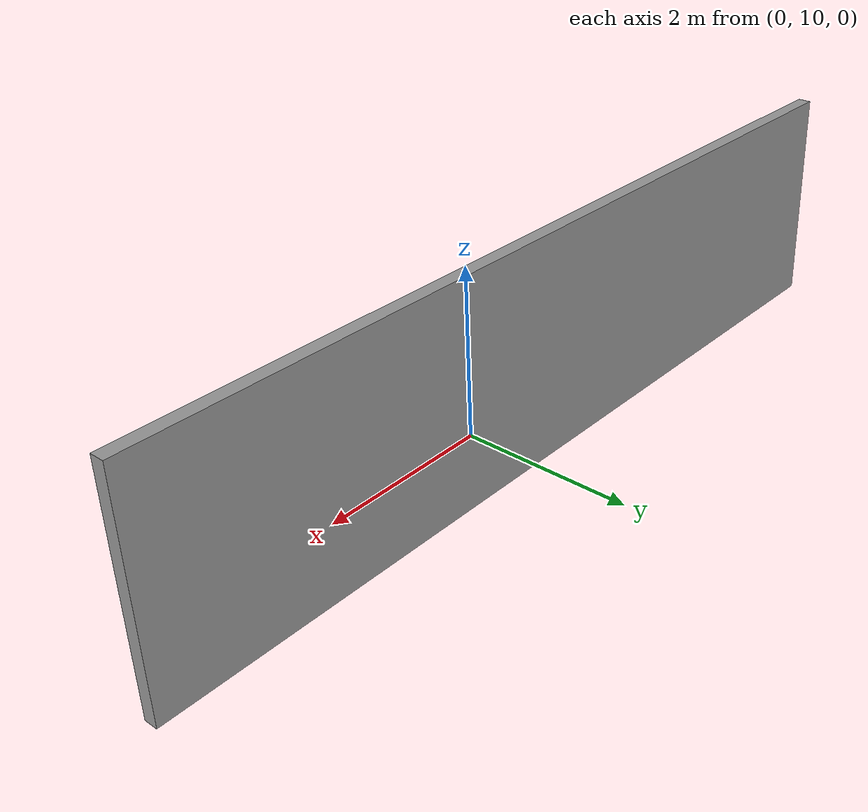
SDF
<?xml version='1.0'?>
<sdf version='1.6'>
  <model name='t3'>
    <pose frame=''>-0.344989 10.7967 0 0 -0 0</pose>
    <link name='Wall_2'>
      <collision name='Wall_2_Collision'>
        <geometry>
          <box>
            <size>10 0.15 2.5</size>
          </box>
        </geometry>
        <pose frame=''>0 0 1.25 0 -0 0</pose>
      </collision>
      <visual name='Wall_2_Visual'>
        <pose frame=''>0 0 1.25 0 -0 0</pose>
        <geometry>
          <box>
            <size>10 0.15 2.5</size>
          </box>
        </geometry>
        <material>
          <script>
            <uri>file://media/materials/scripts/gazebo.material</uri>
            <name>Gazebo/Grey</name>
          </script>
          <ambient>1 1 1 1</ambient>
        </material>
        <meta>
          <layer>0</layer>
        </meta>
      </visual>
      <pose frame=''>0 0 0 0 -0 0</pose>
    </link>
    <static>1</static>
  </model>
</sdf>
